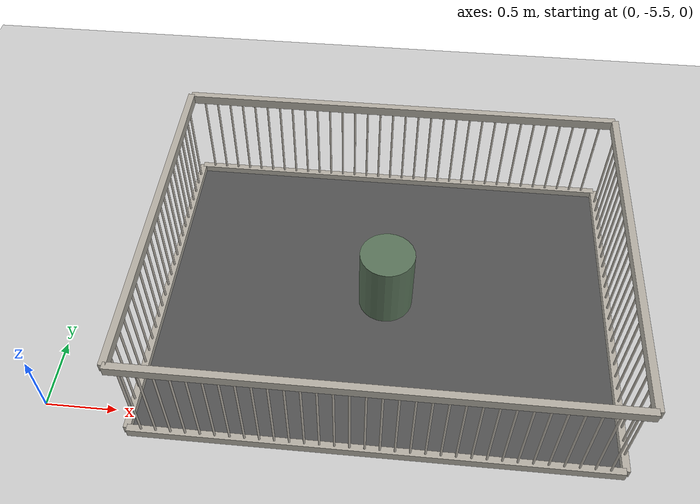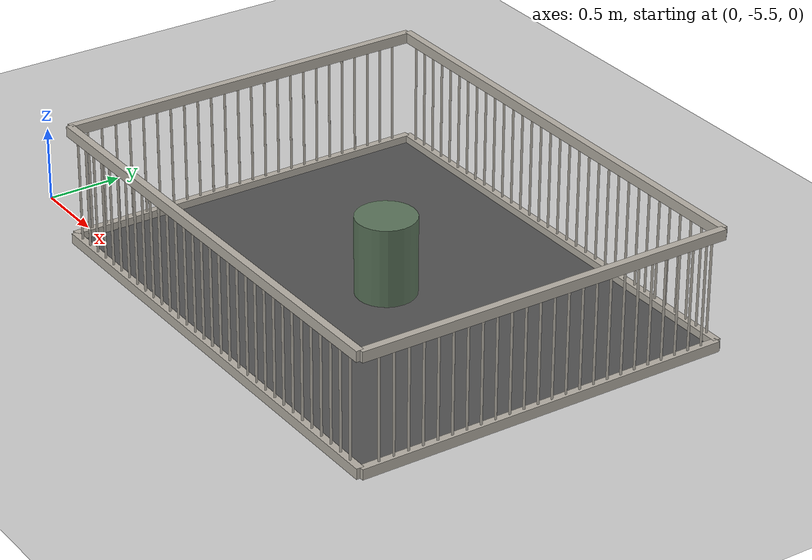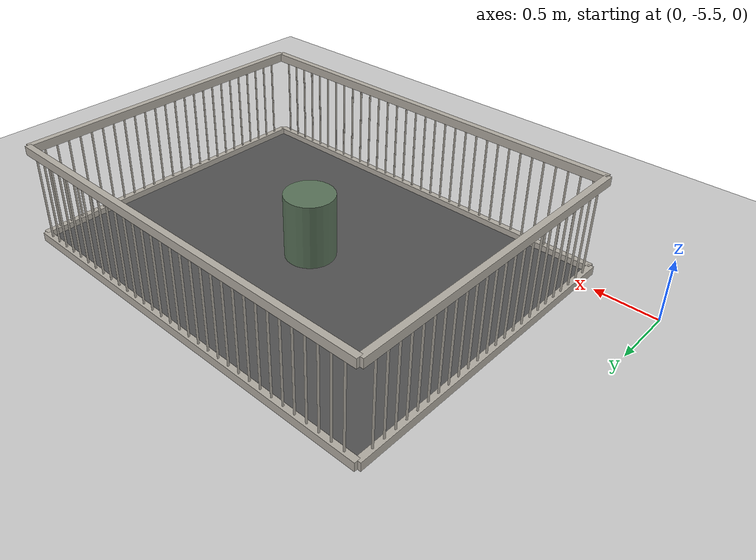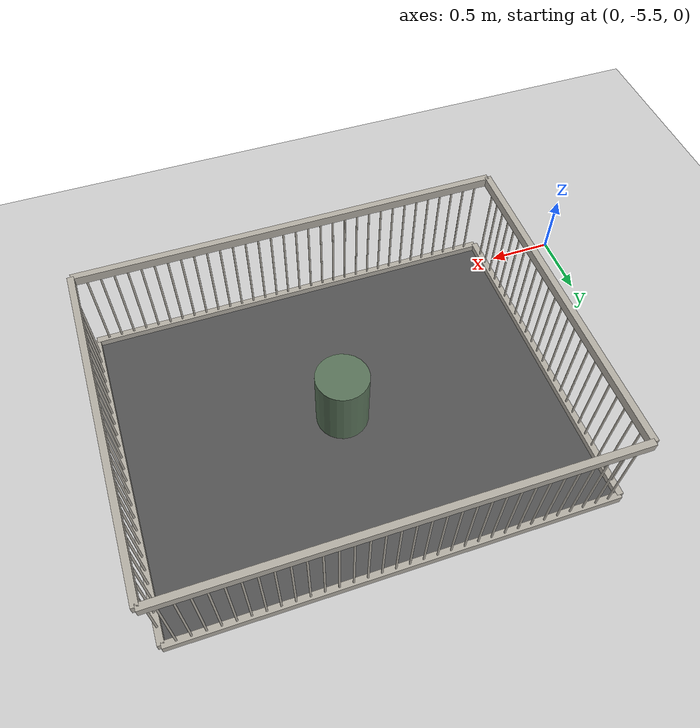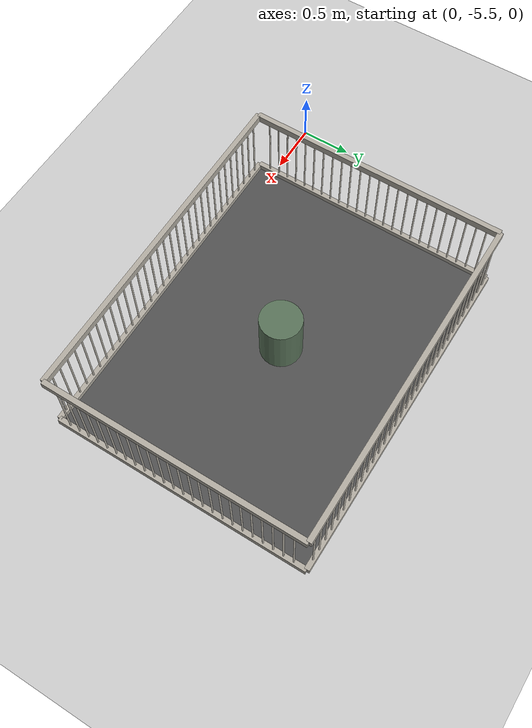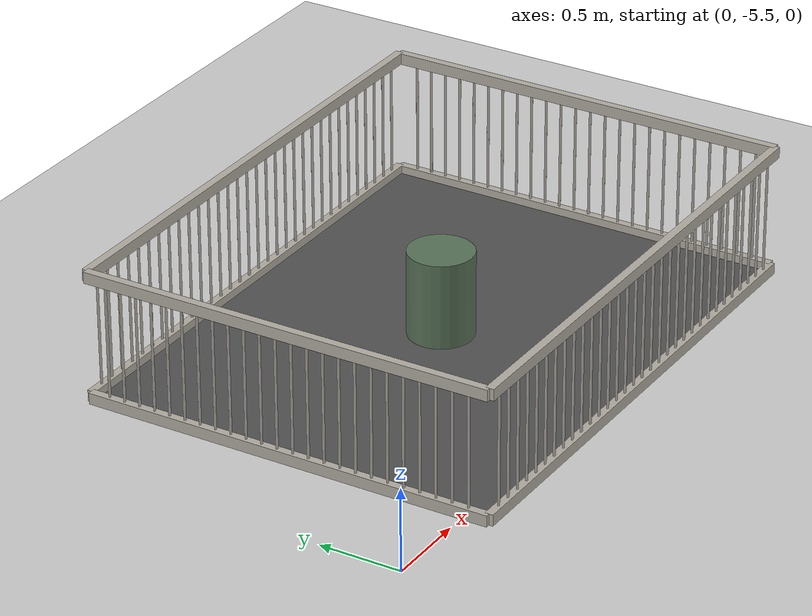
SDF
<sdf version="1.9">
 <world name="pig_pen_16units_world">
  <model name="ground_plane">
   <static>true</static>
   <link name="link">
    <collision name="collision">
     <geometry><plane><normal>0 0 1</normal><size>30 30</size></plane></geometry>
     <surface><friction><ode><mu>1.0</mu><mu2>1.0</mu2></ode></friction></surface>
    </collision>
    <visual name="visual">
     <geometry><plane><normal>0 0 1</normal><size>30 30</size></plane></geometry>
     <material>
      <ambient>0.8 0.8 0.8 1</ambient>
      <diffuse>0.8 0.8 0.8 1</diffuse>
      <specular>0.2 0.2 0.2 1</specular>
     </material>
    </visual>
   </link>
  </model>
  <model name="pen12">
   <pose>2.275 -4.385 0 0 0 0</pose>
   <static>true</static>
   <link name="floor">
    <pose>0 0 0.01 0 0 0</pose>
    <collision name="collision"><geometry><box><size>3.30 2.55 0.02</size></box></geometry></collision>
    <visual name="visual">
     <geometry><box><size>3.30 2.55 0.02</size></box></geometry>
     <material>
      <ambient>0.25 0.25 0.25 1</ambient>
      <diffuse>0.32 0.32 0.32 1</diffuse>
      <specular>0.05 0.05 0.05 1</specular>
     </material>
    </visual>
   </link>
   <link name="left_wall">
    <pose>0 1.275 0.415 0 0 0</pose>
    <collision name="top_rail_col">
     <pose>0 0 0.38 0 0 0</pose>
     <geometry><box><size>3.30 0.05 0.07</size></box></geometry>
    </collision>
    <visual name="top_rail_vis">
     <pose>0 0 0.38 0 0 0</pose>
     <geometry><box><size>3.30 0.05 0.07</size></box></geometry>
     <material><ambient>0.70 0.68 0.64 1</ambient><diffuse>0.70 0.68 0.64 1</diffuse></material>
    </visual>
    <collision name="bottom_rail_col">
     <pose>0 0 -0.38 0 0 0</pose>
     <geometry><box><size>3.30 0.05 0.07</size></box></geometry>
    </collision>
    <visual name="bottom_rail_vis">
     <pose>0 0 -0.38 0 0 0</pose>
     <geometry><box><size>3.30 0.05 0.07</size></box></geometry>
     <material><ambient>0.70 0.68 0.64 1</ambient><diffuse>0.70 0.68 0.64 1</diffuse></material>
    </visual>
    <collision name="bar_01_col">
     <pose>-1.55 0 0 0 0 0</pose>
     <geometry><cylinder><radius>0.0075</radius><length>0.69</length></cylinder></geometry>
    </collision>
    <visual name="bar_01_vis">
     <pose>-1.55 0 0 0 0 0</pose>
     <geometry><cylinder><radius>0.0075</radius><length>0.69</length></cylinder></geometry>
     <material><ambient>0.70 0.68 0.64 1</ambient><diffuse>0.70 0.68 0.64 1</diffuse></material>
    </visual>
    <collision name="bar_02_col">
     <pose>-1.45 0 0 0 0 0</pose>
     <geometry><cylinder><radius>0.0075</radius><length>0.69</length></cylinder></geometry>
    </collision>
    <visual name="bar_02_vis">
     <pose>-1.45 0 0 0 0 0</pose>
     <geometry><cylinder><radius>0.0075</radius><length>0.69</length></cylinder></geometry>
     <material><ambient>0.70 0.68 0.64 1</ambient><diffuse>0.70 0.68 0.64 1</diffuse></material>
    </visual>
    <collision name="bar_03_col">
     <pose>-1.35 0 0 0 0 0</pose>
     <geometry><cylinder><radius>0.0075</radius><length>0.69</length></cylinder></geometry>
    </collision>
    <visual name="bar_03_vis">
     <pose>-1.35 0 0 0 0 0</pose>
     <geometry><cylinder><radius>0.0075</radius><length>0.69</length></cylinder></geometry>
     <material><ambient>0.70 0.68 0.64 1</ambient><diffuse>0.70 0.68 0.64 1</diffuse></material>
    </visual>
    <collision name="bar_04_col">
     <pose>-1.25 0 0 0 0 0</pose>
     <geometry><cylinder><radius>0.0075</radius><length>0.69</length></cylinder></geometry>
    </collision>
    <visual name="bar_04_vis">
     <pose>-1.25 0 0 0 0 0</pose>
     <geometry><cylinder><radius>0.0075</radius><length>0.69</length></cylinder></geometry>
     <material><ambient>0.70 0.68 0.64 1</ambient><diffuse>0.70 0.68 0.64 1</diffuse></material>
    </visual>
    <collision name="bar_05_col">
     <pose>-1.15 0 0 0 0 0</pose>
     <geometry><cylinder><radius>0.0075</radius><length>0.69</length></cylinder></geometry>
    </collision>
    <visual name="bar_05_vis">
     <pose>-1.15 0 0 0 0 0</pose>
     <geometry><cylinder><radius>0.0075</radius><length>0.69</length></cylinder></geometry>
     <material><ambient>0.70 0.68 0.64 1</ambient><diffuse>0.70 0.68 0.64 1</diffuse></material>
    </visual>
    <collision name="bar_06_col">
     <pose>-1.05 0 0 0 0 0</pose>
     <geometry><cylinder><radius>0.0075</radius><length>0.69</length></cylinder></geometry>
    </collision>
    <visual name="bar_06_vis">
     <pose>-1.05 0 0 0 0 0</pose>
     <geometry><cylinder><radius>0.0075</radius><length>0.69</length></cylinder></geometry>
     <material><ambient>0.70 0.68 0.64 1</ambient><diffuse>0.70 0.68 0.64 1</diffuse></material>
    </visual>
    <collision name="bar_07_col">
     <pose>-0.95 0 0 0 0 0</pose>
     <geometry><cylinder><radius>0.0075</radius><length>0.69</length></cylinder></geometry>
    </collision>
    <visual name="bar_07_vis">
     <pose>-0.95 0 0 0 0 0</pose>
     <geometry><cylinder><radius>0.0075</radius><length>0.69</length></cylinder></geometry>
     <material><ambient>0.70 0.68 0.64 1</ambient><diffuse>0.70 0.68 0.64 1</diffuse></material>
    </visual>
    <collision name="bar_08_col">
     <pose>-0.85 0 0 0 0 0</pose>
     <geometry><cylinder><radius>0.0075</radius><length>0.69</length></cylinder></geometry>
    </collision>
    <visual name="bar_08_vis">
     <pose>-0.85 0 0 0 0 0</pose>
     <geometry><cylinder><radius>0.0075</radius><length>0.69</length></cylinder></geometry>
     <material><ambient>0.70 0.68 0.64 1</ambient><diffuse>0.70 0.68 0.64 1</diffuse></material>
    </visual>
    <collision name="bar_09_col">
     <pose>-0.75 0 0 0 0 0</pose>
     <geometry><cylinder><radius>0.0075</radius><length>0.69</length></cylinder></geometry>
    </collision>
    <visual name="bar_09_vis">
     <pose>-0.75 0 0 0 0 0</pose>
     <geometry><cylinder><radius>0.0075</radius><length>0.69</length></cylinder></geometry>
     <material><ambient>0.70 0.68 0.64 1</ambient><diffuse>0.70 0.68 0.64 1</diffuse></material>
    </visual>
    <collision name="bar_10_col">
     <pose>-0.65 0 0 0 0 0</pose>
     <geometry><cylinder><radius>0.0075</radius><length>0.69</length></cylinder></geometry>
    </collision>
    <visual name="bar_10_vis">
     <pose>-0.65 0 0 0 0 0</pose>
     <geometry><cylinder><radius>0.0075</radius><length>0.69</length></cylinder></geometry>
     <material><ambient>0.70 0.68 0.64 1</ambient><diffuse>0.70 0.68 0.64 1</diffuse></material>
    </visual>
    <collision name="bar_11_col">
     <pose>-0.55 0 0 0 0 0</pose>
     <geometry><cylinder><radius>0.0075</radius><length>0.69</length></cylinder></geometry>
    </collision>
    <visual name="bar_11_vis">
     <pose>-0.55 0 0 0 0 0</pose>
     <geometry><cylinder><radius>0.0075</radius><length>0.69</length></cylinder></geometry>
     <material><ambient>0.70 0.68 0.64 1</ambient><diffuse>0.70 0.68 0.64 1</diffuse></material>
    </visual>
    <collision name="bar_12_col">
     <pose>-0.45 0 0 0 0 0</pose>
     <geometry><cylinder><radius>0.0075</radius><length>0.69</length></cylinder></geometry>
    </collision>
    <visual name="bar_12_vis">
     <pose>-0.45 0 0 0 0 0</pose>
     <geometry><cylinder><radius>0.0075</radius><length>0.69</length></cylinder></geometry>
     <material><ambient>0.70 0.68 0.64 1</ambient><diffuse>0.70 0.68 0.64 1</diffuse></material>
    </visual>
    <collision name="bar_13_col">
     <pose>-0.35 0 0 0 0 0</pose>
     <geometry><cylinder><radius>0.0075</radius><length>0.69</length></cylinder></geometry>
    </collision>
    <visual name="bar_13_vis">
     <pose>-0.35 0 0 0 0 0</pose>
     <geometry><cylinder><radius>0.0075</radius><length>0.69</length></cylinder></geometry>
     <material><ambient>0.70 0.68 0.64 1</ambient><diffuse>0.70 0.68 0.64 1</diffuse></material>
    </visual>
    <collision name="bar_14_col">
     <pose>-0.25 0 0 0 0 0</pose>
     <geometry><cylinder><radius>0.0075</radius><length>0.69</length></cylinder></geometry>
    </collision>
    <visual name="bar_14_vis">
     <pose>-0.25 0 0 0 0 0</pose>
     <geometry><cylinder><radius>0.0075</radius><length>0.69</length></cylinder></geometry>
     <material><ambient>0.70 0.68 0.64 1</ambient><diffuse>0.70 0.68 0.64 1</diffuse></material>
    </visual>
    <collision name="bar_15_col">
     <pose>-0.15 0 0 0 0 0</pose>
     <geometry><cylinder><radius>0.0075</radius><length>0.69</length></cylinder></geometry>
    </collision>
    <visual name="bar_15_vis">
     <pose>-0.15 0 0 0 0 0</pose>
     <geometry><cylinder><radius>0.0075</radius><length>0.69</length></cylinder></geometry>
     <material><ambient>0.70 0.68 0.64 1</ambient><diffuse>0.70 0.68 0.64 1</diffuse></material>
    </visual>
    <collision name="bar_16_col">
     <pose>-0.05 0 0 0 0 0</pose>
     <geometry><cylinder><radius>0.0075</radius><length>0.69</length></cylinder></geometry>
    </collision>
    <visual name="bar_16_vis">
     <pose>-0.05 0 0 0 0 0</pose>
     <geometry><cylinder><radius>0.0075</radius><length>0.69</length></cylinder></geometry>
     <material><ambient>0.70 0.68 0.64 1</ambient><diffuse>0.70 0.68 0.64 1</diffuse></material>
    </visual>
    <collision name="bar_17_col">
     <pose>0.05 0 0 0 0 0</pose>
     <geometry><cylinder><radius>0.0075</radius><length>0.69</length></cylinder></geometry>
    </collision>
    <visual name="bar_17_vis">
     <pose>0.05 0 0 0 0 0</pose>
     <geometry><cylinder><radius>0.0075</radius><length>0.69</length></cylinder></geometry>
     <material><ambient>0.70 0.68 0.64 1</ambient><diffuse>0.70 0.68 0.64 1</diffuse></material>
    </visual>
    <collision name="bar_18_col">
     <pose>0.15 0 0 0 0 0</pose>
     <geometry><cylinder><radius>0.0075</radius><length>0.69</length></cylinder></geometry>
    </collision>
    <visual name="bar_18_vis">
     <pose>0.15 0 0 0 0 0</pose>
     <geometry><cylinder><radius>0.0075</radius><length>0.69</length></cylinder></geometry>
     <material><ambient>0.70 0.68 0.64 1</ambient><diffuse>0.70 0.68 0.64 1</diffuse></material>
    </visual>
    <collision name="bar_19_col">
     <pose>0.25 0 0 0 0 0</pose>
     <geometry><cylinder><radius>0.0075</radius><length>0.69</length></cylinder></geometry>
    </collision>
    <visual name="bar_19_vis">
     <pose>0.25 0 0 0 0 0</pose>
     <geometry><cylinder><radius>0.0075</radius><length>0.69</length></cylinder></geometry>
     <material><ambient>0.70 0.68 0.64 1</ambient><diffuse>0.70 0.68 0.64 1</diffuse></material>
    </visual>
    <collision name="bar_20_col">
     <pose>0.35 0 0 0 0 0</pose>
     <geometry><cylinder><radius>0.0075</radius><length>0.69</length></cylinder></geometry>
    </collision>
    <visual name="bar_20_vis">
     <pose>0.35 0 0 0 0 0</pose>
     <geometry><cylinder><radius>0.0075</radius><length>0.69</length></cylinder></geometry>
     <material><ambient>0.70 0.68 0.64 1</ambient><diffuse>0.70 0.68 0.64 1</diffuse></material>
    </visual>
    <collision name="bar_21_col">
     <pose>0.45 0 0 0 0 0</pose>
     <geometry><cylinder><radius>0.0075</radius><length>0.69</length></cylinder></geometry>
    </collision>
    <visual name="bar_21_vis">
     <pose>0.45 0 0 0 0 0</pose>
     <geometry><cylinder><radius>0.0075</radius><length>0.69</length></cylinder></geometry>
     <material><ambient>0.70 0.68 0.64 1</ambient><diffuse>0.70 0.68 0.64 1</diffuse></material>
    </visual>
    <collision name="bar_22_col">
     <pose>0.55 0 0 0 0 0</pose>
     <geometry><cylinder><radius>0.0075</radius><length>0.69</length></cylinder></geometry>
    </collision>
    <visual name="bar_22_vis">
     <pose>0.55 0 0 0 0 0</pose>
     <geometry><cylinder><radius>0.0075</radius><length>0.69</length></cylinder></geometry>
     <material><ambient>0.70 0.68 0.64 1</ambient><diffuse>0.70 0.68 0.64 1</diffuse></material>
    </visual>
    <collision name="bar_23_col">
     <pose>0.65 0 0 0 0 0</pose>
     <geometry><cylinder><radius>0.0075</radius><length>0.69</length></cylinder></geometry>
    </collision>
    <visual name="bar_23_vis">
     <pose>0.65 0 0 0 0 0</pose>
     <geometry><cylinder><radius>0.0075</radius><length>0.69</length></cylinder></geometry>
     <material><ambient>0.70 0.68 0.64 1</ambient><diffuse>0.70 0.68 0.64 1</diffuse></material>
    </visual>
    <collision name="bar_24_col">
     <pose>0.75 0 0 0 0 0</pose>
     <geometry><cylinder><radius>0.0075</radius><length>0.69</length></cylinder></geometry>
    </collision>
    <visual name="bar_24_vis">
     <pose>0.75 0 0 0 0 0</pose>
     <geometry><cylinder><radius>0.0075</radius><length>0.69</length></cylinder></geometry>
     <material><ambient>0.70 0.68 0.64 1</ambient><diffuse>0.70 0.68 0.64 1</diffuse></material>
    </visual>
    <collision name="bar_25_col">
     <pose>0.85 0 0 0 0 0</pose>
     <geometry><cylinder><radius>0.0075</radius><length>0.69</length></cylinder></geometry>
    </collision>
    <visual name="bar_25_vis">
     <pose>0.85 0 0 0 0 0</pose>
     <geometry><cylinder><radius>0.0075</radius><length>0.69</length></cylinder></geometry>
     <material><ambient>0.70 0.68 0.64 1</ambient><diffuse>0.70 0.68 0.64 1</diffuse></material>
    </visual>
    <collision name="bar_26_col">
     <pose>0.95 0 0 0 0 0</pose>
     <geometry><cylinder><radius>0.0075</radius><length>0.69</length></cylinder></geometry>
    </collision>
    <visual name="bar_26_vis">
     <pose>0.95 0 0 0 0 0</pose>
     <geometry><cylinder><radius>0.0075</radius><length>0.69</length></cylinder></geometry>
     <material><ambient>0.70 0.68 0.64 1</ambient><diffuse>0.70 0.68 0.64 1</diffuse></material>
    </visual>
    <collision name="bar_27_col">
     <pose>1.05 0 0 0 0 0</pose>
     <geometry><cylinder><radius>0.0075</radius><length>0.69</length></cylinder></geometry>
    </collision>
    <visual name="bar_27_vis">
     <pose>1.05 0 0 0 0 0</pose>
     <geometry><cylinder><radius>0.0075</radius><length>0.69</length></cylinder></geometry>
     <material><ambient>0.70 0.68 0.64 1</ambient><diffuse>0.70 0.68 0.64 1</diffuse></material>
    </visual>
    <collision name="bar_28_col">
     <pose>1.15 0 0 0 0 0</pose>
     <geometry><cylinder><radius>0.0075</radius><length>0.69</length></cylinder></geometry>
    </collision>
    <visual name="bar_28_vis">
     <pose>1.15 0 0 0 0 0</pose>
     <geometry><cylinder><radius>0.0075</radius><length>0.69</length></cylinder></geometry>
     <material><ambient>0.70 0.68 0.64 1</ambient><diffuse>0.70 0.68 0.64 1</diffuse></material>
    </visual>
    <collision name="bar_29_col">
     <pose>1.25 0 0 0 0 0</pose>
     <geometry><cylinder><radius>0.0075</radius><length>0.69</length></cylinder></geometry>
    </collision>
    <visual name="bar_29_vis">
     <pose>1.25 0 0 0 0 0</pose>
     <geometry><cylinder><radius>0.0075</radius><length>0.69</length></cylinder></geometry>
     <material><ambient>0.70 0.68 0.64 1</ambient><diffuse>0.70 0.68 0.64 1</diffuse></material>
    </visual>
    <collision name="bar_30_col">
     <pose>1.35 0 0 0 0 0</pose>
     <geometry><cylinder><radius>0.0075</radius><length>0.69</length></cylinder></geometry>
    </collision>
    <visual name="bar_30_vis">
     <pose>1.35 0 0 0 0 0</pose>
     <geometry><cylinder><radius>0.0075</radius><length>0.69</length></cylinder></geometry>
     <material><ambient>0.70 0.68 0.64 1</ambient><diffuse>0.70 0.68 0.64 1</diffuse></material>
    </visual>
    <collision name="bar_31_col">
     <pose>1.45 0 0 0 0 0</pose>
     <geometry><cylinder><radius>0.0075</radius><length>0.69</length></cylinder></geometry>
    </collision>
    <visual name="bar_31_vis">
     <pose>1.45 0 0 0 0 0</pose>
     <geometry><cylinder><radius>0.0075</radius><length>0.69</length></cylinder></geometry>
     <material><ambient>0.70 0.68 0.64 1</ambient><diffuse>0.70 0.68 0.64 1</diffuse></material>
    </visual>
    <collision name="bar_32_col">
     <pose>1.55 0 0 0 0 0</pose>
     <geometry><cylinder><radius>0.0075</radius><length>0.69</length></cylinder></geometry>
    </collision>
    <visual name="bar_32_vis">
     <pose>1.55 0 0 0 0 0</pose>
     <geometry><cylinder><radius>0.0075</radius><length>0.69</length></cylinder></geometry>
     <material><ambient>0.70 0.68 0.64 1</ambient><diffuse>0.70 0.68 0.64 1</diffuse></material>
    </visual>
   </link>
   <link name="right_wall">
    <pose>0 -1.275 0.415 0 0 0</pose>
    <collision name="top_rail_col">
     <pose>0 0 0.38 0 0 0</pose>
     <geometry><box><size>3.30 0.05 0.07</size></box></geometry>
    </collision>
    <visual name="top_rail_vis">
     <pose>0 0 0.38 0 0 0</pose>
     <geometry><box><size>3.30 0.05 0.07</size></box></geometry>
     <material><ambient>0.70 0.68 0.64 1</ambient><diffuse>0.70 0.68 0.64 1</diffuse></material>
    </visual>
    <collision name="bottom_rail_col">
     <pose>0 0 -0.38 0 0 0</pose>
     <geometry><box><size>3.30 0.05 0.07</size></box></geometry>
    </collision>
    <visual name="bottom_rail_vis">
     <pose>0 0 -0.38 0 0 0</pose>
     <geometry><box><size>3.30 0.05 0.07</size></box></geometry>
     <material><ambient>0.70 0.68 0.64 1</ambient><diffuse>0.70 0.68 0.64 1</diffuse></material>
    </visual>
    <collision name="bar_01_col">
     <pose>-1.55 0 0 0 0 0</pose>
     <geometry><cylinder><radius>0.0075</radius><length>0.69</length></cylinder></geometry>
    </collision>
    <visual name="bar_01_vis">
     <pose>-1.55 0 0 0 0 0</pose>
     <geometry><cylinder><radius>0.0075</radius><length>0.69</length></cylinder></geometry>
     <material><ambient>0.70 0.68 0.64 1</ambient><diffuse>0.70 0.68 0.64 1</diffuse></material>
    </visual>
    <collision name="bar_02_col">
     <pose>-1.45 0 0 0 0 0</pose>
     <geometry><cylinder><radius>0.0075</radius><length>0.69</length></cylinder></geometry>
    </collision>
    <visual name="bar_02_vis">
     <pose>-1.45 0 0 0 0 0</pose>
     <geometry><cylinder><radius>0.0075</radius><length>0.69</length></cylinder></geometry>
     <material><ambient>0.70 0.68 0.64 1</ambient><diffuse>0.70 0.68 0.64 1</diffuse></material>
    </visual>
    <collision name="bar_03_col">
     <pose>-1.35 0 0 0 0 0</pose>
     <geometry><cylinder><radius>0.0075</radius><length>0.69</length></cylinder></geometry>
    </collision>
    <visual name="bar_03_vis">
     <pose>-1.35 0 0 0 0 0</pose>
     <geometry><cylinder><radius>0.0075</radius><length>0.69</length></cylinder></geometry>
     <material><ambient>0.70 0.68 0.64 1</ambient><diffuse>0.70 0.68 0.64 1</diffuse></material>
    </visual>
    <collision name="bar_04_col">
     <pose>-1.25 0 0 0 0 0</pose>
     <geometry><cylinder><radius>0.0075</radius><length>0.69</length></cylinder></geometry>
    </collision>
    <visual name="bar_04_vis">
     <pose>-1.25 0 0 0 0 0</pose>
     <geometry><cylinder><radius>0.0075</radius><length>0.69</length></cylinder></geometry>
     <material><ambient>0.70 0.68 0.64 1</ambient><diffuse>0.70 0.68 0.64 1</diffuse></material>
    </visual>
    <collision name="bar_05_col">
     <pose>-1.15 0 0 0 0 0</pose>
     <geometry><cylinder><radius>0.0075</radius><length>0.69</length></cylinder></geometry>
    </collision>
    <visual name="bar_05_vis">
     <pose>-1.15 0 0 0 0 0</pose>
     <geometry><cylinder><radius>0.0075</radius><length>0.69</length></cylinder></geometry>
     <material><ambient>0.70 0.68 0.64 1</ambient><diffuse>0.70 0.68 0.64 1</diffuse></material>
    </visual>
    <collision name="bar_06_col">
     <pose>-1.05 0 0 0 0 0</pose>
     <geometry><cylinder><radius>0.0075</radius><length>0.69</length></cylinder></geometry>
    </collision>
    <visual name="bar_06_vis">
     <pose>-1.05 0 0 0 0 0</pose>
     <geometry><cylinder><radius>0.0075</radius><length>0.69</length></cylinder></geometry>
     <material><ambient>0.70 0.68 0.64 1</ambient><diffuse>0.70 0.68 0.64 1</diffuse></material>
    </visual>
    <collision name="bar_07_col">
     <pose>-0.95 0 0 0 0 0</pose>
     <geometry><cylinder><radius>0.0075</radius><length>0.69</length></cylinder></geometry>
    </collision>
    <visual name="bar_07_vis">
     <pose>-0.95 0 0 0 0 0</pose>
     <geometry><cylinder><radius>0.0075</radius><length>0.69</length></cylinder></geometry>
     <material><ambient>0.70 0.68 0.64 1</ambient><diffuse>0.70 0.68 0.64 1</diffuse></material>
    </visual>
    <collision name="bar_08_col">
     <pose>-0.85 0 0 0 0 0</pose>
     <geometry><cylinder><radius>0.0075</radius><length>0.69</length></cylinder></geometry>
    </collision>
    <visual name="bar_08_vis">
     <pose>-0.85 0 0 0 0 0</pose>
     <geometry><cylinder><radius>0.0075</radius><length>0.69</length></cylinder></geometry>
     <material><ambient>0.70 0.68 0.64 1</ambient><diffuse>0.70 0.68 0.64 1</diffuse></material>
    </visual>
    <collision name="bar_09_col">
     <pose>-0.75 0 0 0 0 0</pose>
     <geometry><cylinder><radius>0.0075</radius><length>0.69</length></cylinder></geometry>
    </collision>
    <visual name="bar_09_vis">
     <pose>-0.75 0 0 0 0 0</pose>
     <geometry><cylinder><radius>0.0075</radius><length>0.69</length></cylinder></geometry>
     <material><ambient>0.70 0.68 0.64 1</ambient><diffuse>0.70 0.68 0.64 1</diffuse></material>
    </visual>
    <collision name="bar_10_col">
     <pose>-0.65 0 0 0 0 0</pose>
     <geometry><cylinder><radius>0.0075</radius><length>0.69</length></cylinder></geometry>
    </collision>
    <visual name="bar_10_vis">
     <pose>-0.65 0 0 0 0 0</pose>
     <geometry><cylinder><radius>0.0075</radius><length>0.69</length></cylinder></geometry>
     <material><ambient>0.70 0.68 0.64 1</ambient><diffuse>0.70 0.68 0.64 1</diffuse></material>
    </visual>
    <collision name="bar_11_col">
     <pose>-0.55 0 0 0 0 0</pose>
     <geometry><cylinder><radius>0.0075</radius><length>0.69</length></cylinder></geometry>
    </collision>
    <visual name="bar_11_vis">
     <pose>-0.55 0 0 0 0 0</pose>
     <geometry><cylinder><radius>0.0075</radius><length>0.69</length></cylinder></geometry>
     <material><ambient>0.70 0.68 0.64 1</ambient><diffuse>0.70 0.68 0.64 1</diffuse></material>
    </visual>
    <collision name="bar_12_col">
     <pose>-0.45 0 0 0 0 0</pose>
     <geometry><cylinder><radius>0.0075</radius><length>0.69</length></cylinder></geometry>
    </collision>
    <visual name="bar_12_vis">
     <pose>-0.45 0 0 0 0 0</pose>
     <geometry><cylinder><radius>0.0075</radius><length>0.69</length></cylinder></geometry>
     <material><ambient>0.70 0.68 0.64 1</ambient><diffuse>0.70 0.68 0.64 1</diffuse></material>
    </visual>
    <collision name="bar_13_col">
     <pose>-0.35 0 0 0 0 0</pose>
     <geometry><cylinder><radius>0.0075</radius><length>0.69</length></cylinder></geometry>
    </collision>
    <visual name="bar_13_vis">
     <pose>-0.35 0 0 0 0 0</pose>
     <geometry><cylinder><radius>0.0075</radius><length>0.69</length></cylinder></geometry>
     <material><ambient>0.70 0.68 0.64 1</ambient><diffuse>0.70 0.68 0.64 1</diffuse></material>
    </visual>
    <collision name="bar_14_col">
     <pose>-0.25 0 0 0 0 0</pose>
     <geometry><cylinder><radius>0.0075</radius><length>0.69</length></cylinder></geometry>
    </collision>
    <visual name="bar_14_vis">
     <pose>-0.25 0 0 0 0 0</pose>
     <geometry><cylinder><radius>0.0075</radius><length>0.69</length></cylinder></geometry>
     <material><ambient>0.70 0.68 0.64 1</ambient><diffuse>0.70 0.68 0.64 1</diffuse></material>
    </visual>
    <collision name="bar_15_col">
     <pose>-0.15 0 0 0 0 0</pose>
     <geometry><cylinder><radius>0.0075</radius><length>0.69</length></cylinder></geometry>
    </collision>
    <visual name="bar_15_vis">
     <pose>-0.15 0 0 0 0 0</pose>
     <geometry><cylinder><radius>0.0075</radius><length>0.69</length></cylinder></geometry>
     <material><ambient>0.70 0.68 0.64 1</ambient><diffuse>0.70 0.68 0.64 1</diffuse></material>
    </visual>
    <collision name="bar_16_col">
     <pose>-0.05 0 0 0 0 0</pose>
     <geometry><cylinder><radius>0.0075</radius><length>0.69</length></cylinder></geometry>
    </collision>
    <visual name="bar_16_vis">
     <pose>-0.05 0 0 0 0 0</pose>
     <geometry><cylinder><radius>0.0075</radius><length>0.69</length></cylinder></geometry>
     <material><ambient>0.70 0.68 0.64 1</ambient><diffuse>0.70 0.68 0.64 1</diffuse></material>
    </visual>
    <collision name="bar_17_col">
     <pose>0.05 0 0 0 0 0</pose>
     <geometry><cylinder><radius>0.0075</radius><length>0.69</length></cylinder></geometry>
    </collision>
    <visual name="bar_17_vis">
     <pose>0.05 0 0 0 0 0</pose>
     <geometry><cylinder><radius>0.0075</radius><length>0.69</length></cylinder></geometry>
     <material><ambient>0.70 0.68 0.64 1</ambient><diffuse>0.70 0.68 0.64 1</diffuse></material>
    </visual>
    <collision name="bar_18_col">
     <pose>0.15 0 0 0 0 0</pose>
     <geometry><cylinder><radius>0.0075</radius><length>0.69</length></cylinder></geometry>
    </collision>
    <visual name="bar_18_vis">
     <pose>0.15 0 0 0 0 0</pose>
     <geometry><cylinder><radius>0.0075</radius><length>0.69</length></cylinder></geometry>
     <material><ambient>0.70 0.68 0.64 1</ambient><diffuse>0.70 0.68 0.64 1</diffuse></material>
    </visual>
    <collision name="bar_19_col">
     <pose>0.25 0 0 0 0 0</pose>
     <geometry><cylinder><radius>0.0075</radius><length>0.69</length></cylinder></geometry>
    </collision>
    <visual name="bar_19_vis">
     <pose>0.25 0 0 0 0 0</pose>
     <geometry><cylinder><radius>0.0075</radius><length>0.69</length></cylinder></geometry>
     <material><ambient>0.70 0.68 0.64 1</ambient><diffuse>0.70 0.68 0.64 1</diffuse></material>
    </visual>
    <collision name="bar_20_col">
     <pose>0.35 0 0 0 0 0</pose>
     <geometry><cylinder><radius>0.0075</radius><length>0.69</length></cylinder></geometry>
    </collision>
    <visual name="bar_20_vis">
     <pose>0.35 0 0 0 0 0</pose>
     <geometry><cylinder><radius>0.0075</radius><length>0.69</length></cylinder></geometry>
     <material><ambient>0.70 0.68 0.64 1</ambient><diffuse>0.70 0.68 0.64 1</diffuse></material>
    </visual>
    <collision name="bar_21_col">
     <pose>0.45 0 0 0 0 0</pose>
     <geometry><cylinder><radius>0.0075</radius><length>0.69</length></cylinder></geometry>
    </collision>
    <visual name="bar_21_vis">
     <pose>0.45 0 0 0 0 0</pose>
     <geometry><cylinder><radius>0.0075</radius><length>0.69</length></cylinder></geometry>
     <material><ambient>0.70 0.68 0.64 1</ambient><diffuse>0.70 0.68 0.64 1</diffuse></material>
    </visual>
    <collision name="bar_22_col">
     <pose>0.55 0 0 0 0 0</pose>
     <geometry><cylinder><radius>0.0075</radius><length>0.69</length></cylinder></geometry>
    </collision>
    <visual name="bar_22_vis">
     <pose>0.55 0 0 0 0 0</pose>
     <geometry><cylinder><radius>0.0075</radius><length>0.69</length></cylinder></geometry>
     <material><ambient>0.70 0.68 0.64 1</ambient><diffuse>0.70 0.68 0.64 1</diffuse></material>
    </visual>
    <collision name="bar_23_col">
     <pose>0.65 0 0 0 0 0</pose>
     <geometry><cylinder><radius>0.0075</radius><length>0.69</length></cylinder></geometry>
    </collision>
    <visual name="bar_23_vis">
     <pose>0.65 0 0 0 0 0</pose>
     <geometry><cylinder><radius>0.0075</radius><length>0.69</length></cylinder></geometry>
     <material><ambient>0.70 0.68 0.64 1</ambient><diffuse>0.70 0.68 0.64 1</diffuse></material>
    </visual>
    <collision name="bar_24_col">
     <pose>0.75 0 0 0 0 0</pose>
     <geometry><cylinder><radius>0.0075</radius><length>0.69</length></cylinder></geometry>
    </collision>
    <visual name="bar_24_vis">
     <pose>0.75 0 0 0 0 0</pose>
     <geometry><cylinder><radius>0.0075</radius><length>0.69</length></cylinder></geometry>
     <material><ambient>0.70 0.68 0.64 1</ambient><diffuse>0.70 0.68 0.64 1</diffuse></material>
    </visual>
    <collision name="bar_25_col">
     <pose>0.85 0 0 0 0 0</pose>
     <geometry><cylinder><radius>0.0075</radius><length>0.69</length></cylinder></geometry>
    </collision>
    <visual name="bar_25_vis">
     <pose>0.85 0 0 0 0 0</pose>
     <geometry><cylinder><radius>0.0075</radius><length>0.69</length></cylinder></geometry>
     <material><ambient>0.70 0.68 0.64 1</ambient><diffuse>0.70 0.68 0.64 1</diffuse></material>
    </visual>
    <collision name="bar_26_col">
     <pose>0.95 0 0 0 0 0</pose>
     <geometry><cylinder><radius>0.0075</radius><length>0.69</length></cylinder></geometry>
    </collision>
    <visual name="bar_26_vis">
     <pose>0.95 0 0 0 0 0</pose>
     <geometry><cylinder><radius>0.0075</radius><length>0.69</length></cylinder></geometry>
     <material><ambient>0.70 0.68 0.64 1</ambient><diffuse>0.70 0.68 0.64 1</diffuse></material>
    </visual>
    <collision name="bar_27_col">
     <pose>1.05 0 0 0 0 0</pose>
     <geometry><cylinder><radius>0.0075</radius><length>0.69</length></cylinder></geometry>
    </collision>
    <visual name="bar_27_vis">
     <pose>1.05 0 0 0 0 0</pose>
     <geometry><cylinder><radius>0.0075</radius><length>0.69</length></cylinder></geometry>
     <material><ambient>0.70 0.68 0.64 1</ambient><diffuse>0.70 0.68 0.64 1</diffuse></material>
    </visual>
    <collision name="bar_28_col">
     <pose>1.15 0 0 0 0 0</pose>
     <geometry><cylinder><radius>0.0075</radius><length>0.69</length></cylinder></geometry>
    </collision>
    <visual name="bar_28_vis">
     <pose>1.15 0 0 0 0 0</pose>
     <geometry><cylinder><radius>0.0075</radius><length>0.69</length></cylinder></geometry>
     <material><ambient>0.70 0.68 0.64 1</ambient><diffuse>0.70 0.68 0.64 1</diffuse></material>
    </visual>
    <collision name="bar_29_col">
     <pose>1.25 0 0 0 0 0</pose>
     <geometry><cylinder><radius>0.0075</radius><length>0.69</length></cylinder></geometry>
    </collision>
    <visual name="bar_29_vis">
     <pose>1.25 0 0 0 0 0</pose>
     <geometry><cylinder><radius>0.0075</radius><length>0.69</length></cylinder></geometry>
     <material><ambient>0.70 0.68 0.64 1</ambient><diffuse>0.70 0.68 0.64 1</diffuse></material>
    </visual>
    <collision name="bar_30_col">
     <pose>1.35 0 0 0 0 0</pose>
     <geometry><cylinder><radius>0.0075</radius><length>0.69</length></cylinder></geometry>
    </collision>
    <visual name="bar_30_vis">
     <pose>1.35 0 0 0 0 0</pose>
     <geometry><cylinder><radius>0.0075</radius><length>0.69</length></cylinder></geometry>
     <material><ambient>0.70 0.68 0.64 1</ambient><diffuse>0.70 0.68 0.64 1</diffuse></material>
    </visual>
    <collision name="bar_31_col">
     <pose>1.45 0 0 0 0 0</pose>
     <geometry><cylinder><radius>0.0075</radius><length>0.69</length></cylinder></geometry>
    </collision>
    <visual name="bar_31_vis">
     <pose>1.45 0 0 0 0 0</pose>
     <geometry><cylinder><radius>0.0075</radius><length>0.69</length></cylinder></geometry>
     <material><ambient>0.70 0.68 0.64 1</ambient><diffuse>0.70 0.68 0.64 1</diffuse></material>
    </visual>
    <collision name="bar_32_col">
     <pose>1.55 0 0 0 0 0</pose>
     <geometry><cylinder><radius>0.0075</radius><length>0.69</length></cylinder></geometry>
    </collision>
    <visual name="bar_32_vis">
     <pose>1.55 0 0 0 0 0</pose>
     <geometry><cylinder><radius>0.0075</radius><length>0.69</length></cylinder></geometry>
     <material><ambient>0.70 0.68 0.64 1</ambient><diffuse>0.70 0.68 0.64 1</diffuse></material>
    </visual>
   </link>
   <link name="back_wall">
    <pose>1.65 0 0.415 0 0 0</pose>
    <collision name="top_rail_col">
     <pose>0 0 0.38 0 0 0</pose>
     <geometry><box><size>0.05 2.55 0.07</size></box></geometry>
    </collision>
    <visual name="top_rail_vis">
     <pose>0 0 0.38 0 0 0</pose>
     <geometry><box><size>0.05 2.55 0.07</size></box></geometry>
     <material><ambient>0.70 0.68 0.64 1</ambient><diffuse>0.70 0.68 0.64 1</diffuse></material>
    </visual>
    <collision name="bottom_rail_col">
     <pose>0 0 -0.38 0 0 0</pose>
     <geometry><box><size>0.05 2.55 0.07</size></box></geometry>
    </collision>
    <visual name="bottom_rail_vis">
     <pose>0 0 -0.38 0 0 0</pose>
     <geometry><box><size>0.05 2.55 0.07</size></box></geometry>
     <material><ambient>0.70 0.68 0.64 1</ambient><diffuse>0.70 0.68 0.64 1</diffuse></material>
    </visual>
    <collision name="bar_01_col">
     <pose>0 -1.15 0 0 0 0</pose>
     <geometry><cylinder><radius>0.0075</radius><length>0.69</length></cylinder></geometry>
    </collision>
    <visual name="bar_01_vis">
     <pose>0 -1.15 0 0 0 0</pose>
     <geometry><cylinder><radius>0.0075</radius><length>0.69</length></cylinder></geometry>
     <material><ambient>0.70 0.68 0.64 1</ambient><diffuse>0.70 0.68 0.64 1</diffuse></material>
    </visual>
    <collision name="bar_02_col">
     <pose>0 -1.05 0 0 0 0</pose>
     <geometry><cylinder><radius>0.0075</radius><length>0.69</length></cylinder></geometry>
    </collision>
    <visual name="bar_02_vis">
     <pose>0 -1.05 0 0 0 0</pose>
     <geometry><cylinder><radius>0.0075</radius><length>0.69</length></cylinder></geometry>
     <material><ambient>0.70 0.68 0.64 1</ambient><diffuse>0.70 0.68 0.64 1</diffuse></material>
    </visual>
    <collision name="bar_03_col">
     <pose>0 -0.95 0 0 0 0</pose>
     <geometry><cylinder><radius>0.0075</radius><length>0.69</length></cylinder></geometry>
    </collision>
    <visual name="bar_03_vis">
     <pose>0 -0.95 0 0 0 0</pose>
     <geometry><cylinder><radius>0.0075</radius><length>0.69</length></cylinder></geometry>
     <material><ambient>0.70 0.68 0.64 1</ambient><diffuse>0.70 0.68 0.64 1</diffuse></material>
    </visual>
    <collision name="bar_04_col">
     <pose>0 -0.85 0 0 0 0</pose>
     <geometry><cylinder><radius>0.0075</radius><length>0.69</length></cylinder></geometry>
    </collision>
    <visual name="bar_04_vis">
     <pose>0 -0.85 0 0 0 0</pose>
     <geometry><cylinder><radius>0.0075</radius><length>0.69</length></cylinder></geometry>
     <material><ambient>0.70 0.68 0.64 1</ambient><diffuse>0.70 0.68 0.64 1</diffuse></material>
    </visual>
    <collision name="bar_05_col">
     <pose>0 -0.75 0 0 0 0</pose>
     <geometry><cylinder><radius>0.0075</radius><length>0.69</length></cylinder></geometry>
    </collision>
    <visual name="bar_05_vis">
     <pose>0 -0.75 0 0 0 0</pose>
     <geometry><cylinder><radius>0.0075</radius><length>0.69</length></cylinder></geometry>
     <material><ambient>0.70 0.68 0.64 1</ambient><diffuse>0.70 0.68 0.64 1</diffuse></material>
    </visual>
    <collision name="bar_06_col">
     <pose>0 -0.65 0 0 0 0</pose>
     <geometry><cylinder><radius>0.0075</radius><length>0.69</length></cylinder></geometry>
    </collision>
    <visual name="bar_06_vis">
     <pose>0 -0.65 0 0 0 0</pose>
     <geometry><cylinder><radius>0.0075</radius><length>0.69</length></cylinder></geometry>
     <material><ambient>0.70 0.68 0.64 1</ambient><diffuse>0.70 0.68 0.64 1</diffuse></material>
    </visual>
    <collision name="bar_07_col">
     <pose>0 -0.55 0 0 0 0</pose>
     <geometry><cylinder><radius>0.0075</radius><length>0.69</length></cylinder></geometry>
    </collision>
    <visual name="bar_07_vis">
     <pose>0 -0.55 0 0 0 0</pose>
     <geometry><cylinder><radius>0.0075</radius><length>0.69</length></cylinder></geometry>
     <material><ambient>0.70 0.68 0.64 1</ambient><diffuse>0.70 0.68 0.64 1</diffuse></material>
    </visual>
    <collision name="bar_08_col">
     <pose>0 -0.45 0 0 0 0</pose>
     <geometry><cylinder><radius>0.0075</radius><length>0.69</length></cylinder></geometry>
    </collision>
    <visual name="bar_08_vis">
     <pose>0 -0.45 0 0 0 0</pose>
     <geometry><cylinder><radius>0.0075</radius><length>0.69</length></cylinder></geometry>
     <material><ambient>0.70 0.68 0.64 1</ambient><diffuse>0.70 0.68 0.64 1</diffuse></material>
    </visual>
    <collision name="bar_09_col">
     <pose>0 -0.35 0 0 0 0</pose>
     <geometry><cylinder><radius>0.0075</radius><length>0.69</length></cylinder></geometry>
    </collision>
    <visual name="bar_09_vis">
     <pose>0 -0.35 0 0 0 0</pose>
     <geometry><cylinder><radius>0.0075</radius><length>0.69</length></cylinder></geometry>
     <material><ambient>0.70 0.68 0.64 1</ambient><diffuse>0.70 0.68 0.64 1</diffuse></material>
    </visual>
    <collision name="bar_10_col">
     <pose>0 -0.25 0 0 0 0</pose>
     <geometry><cylinder><radius>0.0075</radius><length>0.69</length></cylinder></geometry>
    </collision>
    <visual name="bar_10_vis">
     <pose>0 -0.25 0 0 0 0</pose>
     <geometry><cylinder><radius>0.0075</radius><length>0.69</length></cylinder></geometry>
     <material><ambient>0.70 0.68 0.64 1</ambient><diffuse>0.70 0.68 0.64 1</diffuse></material>
    </visual>
    <collision name="bar_11_col">
     <pose>0 -0.15 0 0 0 0</pose>
     <geometry><cylinder><radius>0.0075</radius><length>0.69</length></cylinder></geometry>
    </collision>
    <visual name="bar_11_vis">
     <pose>0 -0.15 0 0 0 0</pose>
     <geometry><cylinder><radius>0.0075</radius><length>0.69</length></cylinder></geometry>
     <material><ambient>0.70 0.68 0.64 1</ambient><diffuse>0.70 0.68 0.64 1</diffuse></material>
    </visual>
    <collision name="bar_12_col">
     <pose>0 -0.05 0 0 0 0</pose>
     <geometry><cylinder><radius>0.0075</radius><length>0.69</length></cylinder></geometry>
    </collision>
    <visual name="bar_12_vis">
     <pose>0 -0.05 0 0 0 0</pose>
     <geometry><cylinder><radius>0.0075</radius><length>0.69</length></cylinder></geometry>
     <material><ambient>0.70 0.68 0.64 1</ambient><diffuse>0.70 0.68 0.64 1</diffuse></material>
    </visual>
    <collision name="bar_13_col">
     <pose>0 0.05 0 0 0 0</pose>
     <geometry><cylinder><radius>0.0075</radius><length>0.69</length></cylinder></geometry>
    </collision>
    <visual name="bar_13_vis">
     <pose>0 0.05 0 0 0 0</pose>
     <geometry><cylinder><radius>0.0075</radius><length>0.69</length></cylinder></geometry>
     <material><ambient>0.70 0.68 0.64 1</ambient><diffuse>0.70 0.68 0.64 1</diffuse></material>
    </visual>
    <collision name="bar_14_col">
     <pose>0 0.15 0 0 0 0</pose>
     <geometry><cylinder><radius>0.0075</radius><length>0.69</length></cylinder></geometry>
    </collision>
    <visual name="bar_14_vis">
     <pose>0 0.15 0 0 0 0</pose>
     <geometry><cylinder><radius>0.0075</radius><length>0.69</length></cylinder></geometry>
     <material><ambient>0.70 0.68 0.64 1</ambient><diffuse>0.70 0.68 0.64 1</diffuse></material>
    </visual>
    <collision name="bar_15_col">
     <pose>0 0.25 0 0 0 0</pose>
     <geometry><cylinder><radius>0.0075</radius><length>0.69</length></cylinder></geometry>
    </collision>
    <visual name="bar_15_vis">
     <pose>0 0.25 0 0 0 0</pose>
     <geometry><cylinder><radius>0.0075</radius><length>0.69</length></cylinder></geometry>
     <material><ambient>0.70 0.68 0.64 1</ambient><diffuse>0.70 0.68 0.64 1</diffuse></material>
    </visual>
    <collision name="bar_16_col">
     <pose>0 0.35 0 0 0 0</pose>
     <geometry><cylinder><radius>0.0075</radius><length>0.69</length></cylinder></geometry>
    </collision>
    <visual name="bar_16_vis">
     <pose>0 0.35 0 0 0 0</pose>
     <geometry><cylinder><radius>0.0075</radius><length>0.69</length></cylinder></geometry>
     <material><ambient>0.70 0.68 0.64 1</ambient><diffuse>0.70 0.68 0.64 1</diffuse></material>
    </visual>
    <collision name="bar_17_col">
     <pose>0 0.45 0 0 0 0</pose>
     <geometry><cylinder><radius>0.0075</radius><length>0.69</length></cylinder></geometry>
    </collision>
    <visual name="bar_17_vis">
     <pose>0 0.45 0 0 0 0</pose>
     <geometry><cylinder><radius>0.0075</radius><length>0.69</length></cylinder></geometry>
     <material><ambient>0.70 0.68 0.64 1</ambient><diffuse>0.70 0.68 0.64 1</diffuse></material>
    </visual>
    <collision name="bar_18_col">
     <pose>0 0.55 0 0 0 0</pose>
     <geometry><cylinder><radius>0.0075</radius><length>0.69</length></cylinder></geometry>
    </collision>
    <visual name="bar_18_vis">
     <pose>0 0.55 0 0 0 0</pose>
     <geometry><cylinder><radius>0.0075</radius><length>0.69</length></cylinder></geometry>
     <material><ambient>0.70 0.68 0.64 1</ambient><diffuse>0.70 0.68 0.64 1</diffuse></material>
    </visual>
    <collision name="bar_19_col">
     <pose>0 0.65 0 0 0 0</pose>
     <geometry><cylinder><radius>0.0075</radius><length>0.69</length></cylinder></geometry>
    </collision>
    <visual name="bar_19_vis">
     <pose>0 0.65 0 0 0 0</pose>
     <geometry><cylinder><radius>0.0075</radius><length>0.69</length></cylinder></geometry>
     <material><ambient>0.70 0.68 0.64 1</ambient><diffuse>0.70 0.68 0.64 1</diffuse></material>
    </visual>
    <collision name="bar_20_col">
     <pose>0 0.75 0 0 0 0</pose>
     <geometry><cylinder><radius>0.0075</radius><length>0.69</length></cylinder></geometry>
    </collision>
    <visual name="bar_20_vis">
     <pose>0 0.75 0 0 0 0</pose>
     <geometry><cylinder><radius>0.0075</radius><length>0.69</length></cylinder></geometry>
     <material><ambient>0.70 0.68 0.64 1</ambient><diffuse>0.70 0.68 0.64 1</diffuse></material>
    </visual>
    <collision name="bar_21_col">
     <pose>0 0.85 0 0 0 0</pose>
     <geometry><cylinder><radius>0.0075</radius><length>0.69</length></cylinder></geometry>
    </collision>
    <visual name="bar_21_vis">
     <pose>0 0.85 0 0 0 0</pose>
     <geometry><cylinder><radius>0.0075</radius><length>0.69</length></cylinder></geometry>
     <material><ambient>0.70 0.68 0.64 1</ambient><diffuse>0.70 0.68 0.64 1</diffuse></material>
    </visual>
    <collision name="bar_22_col">
     <pose>0 0.95 0 0 0 0</pose>
     <geometry><cylinder><radius>0.0075</radius><length>0.69</length></cylinder></geometry>
    </collision>
    <visual name="bar_22_vis">
     <pose>0 0.95 0 0 0 0</pose>
     <geometry><cylinder><radius>0.0075</radius><length>0.69</length></cylinder></geometry>
     <material><ambient>0.70 0.68 0.64 1</ambient><diffuse>0.70 0.68 0.64 1</diffuse></material>
    </visual>
    <collision name="bar_23_col">
     <pose>0 1.05 0 0 0 0</pose>
     <geometry><cylinder><radius>0.0075</radius><length>0.69</length></cylinder></geometry>
    </collision>
    <visual name="bar_23_vis">
     <pose>0 1.05 0 0 0 0</pose>
     <geometry><cylinder><radius>0.0075</radius><length>0.69</length></cylinder></geometry>
     <material><ambient>0.70 0.68 0.64 1</ambient><diffuse>0.70 0.68 0.64 1</diffuse></material>
    </visual>
    <collision name="bar_24_col">
     <pose>0 1.15 0 0 0 0</pose>
     <geometry><cylinder><radius>0.0075</radius><length>0.69</length></cylinder></geometry>
    </collision>
    <visual name="bar_24_vis">
     <pose>0 1.15 0 0 0 0</pose>
     <geometry><cylinder><radius>0.0075</radius><length>0.69</length></cylinder></geometry>
     <material><ambient>0.70 0.68 0.64 1</ambient><diffuse>0.70 0.68 0.64 1</diffuse></material>
    </visual>
   </link>
   <link name="front_wall">
    <pose>-1.65 0 0.415 0 0 0</pose>
    <collision name="top_rail_col">
     <pose>0 0 0.38 0 0 0</pose>
     <geometry><box><size>0.05 2.55 0.07</size></box></geometry>
    </collision>
    <visual name="top_rail_vis">
     <pose>0 0 0.38 0 0 0</pose>
     <geometry><box><size>0.05 2.55 0.07</size></box></geometry>
     <material><ambient>0.70 0.68 0.64 1</ambient><diffuse>0.70 0.68 0.64 1</diffuse></material>
    </visual>
    <collision name="bottom_rail_col">
     <pose>0 0 -0.38 0 0 0</pose>
     <geometry><box><size>0.05 2.55 0.07</size></box></geometry>
    </collision>
    <visual name="bottom_rail_vis">
     <pose>0 0 -0.38 0 0 0</pose>
     <geometry><box><size>0.05 2.55 0.07</size></box></geometry>
     <material><ambient>0.70 0.68 0.64 1</ambient><diffuse>0.70 0.68 0.64 1</diffuse></material>
    </visual>
    <collision name="bar_01_col">
     <pose>0 -1.15 0 0 0 0</pose>
     <geometry><cylinder><radius>0.0075</radius><length>0.69</length></cylinder></geometry>
    </collision>
    <visual name="bar_01_vis">
     <pose>0 -1.15 0 0 0 0</pose>
     <geometry><cylinder><radius>0.0075</radius><length>0.69</length></cylinder></geometry>
     <material><ambient>0.70 0.68 0.64 1</ambient><diffuse>0.70 0.68 0.64 1</diffuse></material>
    </visual>
    <collision name="bar_02_col">
     <pose>0 -1.05 0 0 0 0</pose>
     <geometry><cylinder><radius>0.0075</radius><length>0.69</length></cylinder></geometry>
    </collision>
    <visual name="bar_02_vis">
     <pose>0 -1.05 0 0 0 0</pose>
     <geometry><cylinder><radius>0.0075</radius><length>0.69</length></cylinder></geometry>
     <material><ambient>0.70 0.68 0.64 1</ambient><diffuse>0.70 0.68 0.64 1</diffuse></material>
    </visual>
    <collision name="bar_03_col">
     <pose>0 -0.95 0 0 0 0</pose>
     <geometry><cylinder><radius>0.0075</radius><length>0.69</length></cylinder></geometry>
    </collision>
    <visual name="bar_03_vis">
     <pose>0 -0.95 0 0 0 0</pose>
     <geometry><cylinder><radius>0.0075</radius><length>0.69</length></cylinder></geometry>
     <material><ambient>0.70 0.68 0.64 1</ambient><diffuse>0.70 0.68 0.64 1</diffuse></material>
    </visual>
    <collision name="bar_04_col">
     <pose>0 -0.85 0 0 0 0</pose>
     <geometry><cylinder><radius>0.0075</radius><length>0.69</length></cylinder></geometry>
    </collision>
    <visual name="bar_04_vis">
     <pose>0 -0.85 0 0 0 0</pose>
     <geometry><cylinder><radius>0.0075</radius><length>0.69</length></cylinder></geometry>
     <material><ambient>0.70 0.68 0.64 1</ambient><diffuse>0.70 0.68 0.64 1</diffuse></material>
    </visual>
    <collision name="bar_05_col">
     <pose>0 -0.75 0 0 0 0</pose>
     <geometry><cylinder><radius>0.0075</radius><length>0.69</length></cylinder></geometry>
    </collision>
    <visual name="bar_05_vis">
     <pose>0 -0.75 0 0 0 0</pose>
     <geometry><cylinder><radius>0.0075</radius><length>0.69</length></cylinder></geometry>
     <material><ambient>0.70 0.68 0.64 1</ambient><diffuse>0.70 0.68 0.64 1</diffuse></material>
    </visual>
    <collision name="bar_06_col">
     <pose>0 -0.65 0 0 0 0</pose>
     <geometry><cylinder><radius>0.0075</radius><length>0.69</length></cylinder></geometry>
    </collision>
    <visual name="bar_06_vis">
     <pose>0 -0.65 0 0 0 0</pose>
     <geometry><cylinder><radius>0.0075</radius><length>0.69</length></cylinder></geometry>
     <material><ambient>0.70 0.68 0.64 1</ambient><diffuse>0.70 0.68 0.64 1</diffuse></material>
    </visual>
    <collision name="bar_07_col">
     <pose>0 -0.55 0 0 0 0</pose>
     <geometry><cylinder><radius>0.0075</radius><length>0.69</length></cylinder></geometry>
    </collision>
    <visual name="bar_07_vis">
     <pose>0 -0.55 0 0 0 0</pose>
     <geometry><cylinder><radius>0.0075</radius><length>0.69</length></cylinder></geometry>
     <material><ambient>0.70 0.68 0.64 1</ambient><diffuse>0.70 0.68 0.64 1</diffuse></material>
    </visual>
    <collision name="bar_08_col">
     <pose>0 -0.45 0 0 0 0</pose>
     <geometry><cylinder><radius>0.0075</radius><length>0.69</length></cylinder></geometry>
    </collision>
    <visual name="bar_08_vis">
     <pose>0 -0.45 0 0 0 0</pose>
     <geometry><cylinder><radius>0.0075</radius><length>0.69</length></cylinder></geometry>
     <material><ambient>0.70 0.68 0.64 1</ambient><diffuse>0.70 0.68 0.64 1</diffuse></material>
    </visual>
    <collision name="bar_09_col">
     <pose>0 -0.35 0 0 0 0</pose>
     <geometry><cylinder><radius>0.0075</radius><length>0.69</length></cylinder></geometry>
    </collision>
    <visual name="bar_09_vis">
     <pose>0 -0.35 0 0 0 0</pose>
     <geometry><cylinder><radius>0.0075</radius><length>0.69</length></cylinder></geometry>
     <material><ambient>0.70 0.68 0.64 1</ambient><diffuse>0.70 0.68 0.64 1</diffuse></material>
    </visual>
    <collision name="bar_10_col">
     <pose>0 -0.25 0 0 0 0</pose>
     <geometry><cylinder><radius>0.0075</radius><length>0.69</length></cylinder></geometry>
    </collision>
    <visual name="bar_10_vis">
     <pose>0 -0.25 0 0 0 0</pose>
     <geometry><cylinder><radius>0.0075</radius><length>0.69</length></cylinder></geometry>
     <material><ambient>0.70 0.68 0.64 1</ambient><diffuse>0.70 0.68 0.64 1</diffuse></material>
    </visual>
    <collision name="bar_11_col">
     <pose>0 -0.15 0 0 0 0</pose>
     <geometry><cylinder><radius>0.0075</radius><length>0.69</length></cylinder></geometry>
    </collision>
    <visual name="bar_11_vis">
     <pose>0 -0.15 0 0 0 0</pose>
     <geometry><cylinder><radius>0.0075</radius><length>0.69</length></cylinder></geometry>
     <material><ambient>0.70 0.68 0.64 1</ambient><diffuse>0.70 0.68 0.64 1</diffuse></material>
    </visual>
    <collision name="bar_12_col">
     <pose>0 -0.05 0 0 0 0</pose>
     <geometry><cylinder><radius>0.0075</radius><length>0.69</length></cylinder></geometry>
    </collision>
    <visual name="bar_12_vis">
     <pose>0 -0.05 0 0 0 0</pose>
     <geometry><cylinder><radius>0.0075</radius><length>0.69</length></cylinder></geometry>
     <material><ambient>0.70 0.68 0.64 1</ambient><diffuse>0.70 0.68 0.64 1</diffuse></material>
    </visual>
    <collision name="bar_13_col">
     <pose>0 0.05 0 0 0 0</pose>
     <geometry><cylinder><radius>0.0075</radius><length>0.69</length></cylinder></geometry>
    </collision>
    <visual name="bar_13_vis">
     <pose>0 0.05 0 0 0 0</pose>
     <geometry><cylinder><radius>0.0075</radius><length>0.69</length></cylinder></geometry>
     <material><ambient>0.70 0.68 0.64 1</ambient><diffuse>0.70 0.68 0.64 1</diffuse></material>
    </visual>
    <collision name="bar_14_col">
     <pose>0 0.15 0 0 0 0</pose>
     <geometry><cylinder><radius>0.0075</radius><length>0.69</length></cylinder></geometry>
    </collision>
    <visual name="bar_14_vis">
     <pose>0 0.15 0 0 0 0</pose>
     <geometry><cylinder><radius>0.0075</radius><length>0.69</length></cylinder></geometry>
     <material><ambient>0.70 0.68 0.64 1</ambient><diffuse>0.70 0.68 0.64 1</diffuse></material>
    </visual>
    <collision name="bar_15_col">
     <pose>0 0.25 0 0 0 0</pose>
     <geometry><cylinder><radius>0.0075</radius><length>0.69</length></cylinder></geometry>
    </collision>
    <visual name="bar_15_vis">
     <pose>0 0.25 0 0 0 0</pose>
     <geometry><cylinder><radius>0.0075</radius><length>0.69</length></cylinder></geometry>
     <material><ambient>0.70 0.68 0.64 1</ambient><diffuse>0.70 0.68 0.64 1</diffuse></material>
    </visual>
    <collision name="bar_16_col">
     <pose>0 0.35 0 0 0 0</pose>
     <geometry><cylinder><radius>0.0075</radius><length>0.69</length></cylinder></geometry>
    </collision>
    <visual name="bar_16_vis">
     <pose>0 0.35 0 0 0 0</pose>
     <geometry><cylinder><radius>0.0075</radius><length>0.69</length></cylinder></geometry>
     <material><ambient>0.70 0.68 0.64 1</ambient><diffuse>0.70 0.68 0.64 1</diffuse></material>
    </visual>
    <collision name="bar_17_col">
     <pose>0 0.45 0 0 0 0</pose>
     <geometry><cylinder><radius>0.0075</radius><length>0.69</length></cylinder></geometry>
    </collision>
    <visual name="bar_17_vis">
     <pose>0 0.45 0 0 0 0</pose>
     <geometry><cylinder><radius>0.0075</radius><length>0.69</length></cylinder></geometry>
     <material><ambient>0.70 0.68 0.64 1</ambient><diffuse>0.70 0.68 0.64 1</diffuse></material>
    </visual>
    <collision name="bar_18_col">
     <pose>0 0.55 0 0 0 0</pose>
     <geometry><cylinder><radius>0.0075</radius><length>0.69</length></cylinder></geometry>
    </collision>
    <visual name="bar_18_vis">
     <pose>0 0.55 0 0 0 0</pose>
     <geometry><cylinder><radius>0.0075</radius><length>0.69</length></cylinder></geometry>
     <material><ambient>0.70 0.68 0.64 1</ambient><diffuse>0.70 0.68 0.64 1</diffuse></material>
    </visual>
    <collision name="bar_19_col">
     <pose>0 0.65 0 0 0 0</pose>
     <geometry><cylinder><radius>0.0075</radius><length>0.69</length></cylinder></geometry>
    </collision>
    <visual name="bar_19_vis">
     <pose>0 0.65 0 0 0 0</pose>
     <geometry><cylinder><radius>0.0075</radius><length>0.69</length></cylinder></geometry>
     <material><ambient>0.70 0.68 0.64 1</ambient><diffuse>0.70 0.68 0.64 1</diffuse></material>
    </visual>
    <collision name="bar_20_col">
     <pose>0 0.75 0 0 0 0</pose>
     <geometry><cylinder><radius>0.0075</radius><length>0.69</length></cylinder></geometry>
    </collision>
    <visual name="bar_20_vis">
     <pose>0 0.75 0 0 0 0</pose>
     <geometry><cylinder><radius>0.0075</radius><length>0.69</length></cylinder></geometry>
     <material><ambient>0.70 0.68 0.64 1</ambient><diffuse>0.70 0.68 0.64 1</diffuse></material>
    </visual>
    <collision name="bar_21_col">
     <pose>0 0.85 0 0 0 0</pose>
     <geometry><cylinder><radius>0.0075</radius><length>0.69</length></cylinder></geometry>
    </collision>
    <visual name="bar_21_vis">
     <pose>0 0.85 0 0 0 0</pose>
     <geometry><cylinder><radius>0.0075</radius><length>0.69</length></cylinder></geometry>
     <material><ambient>0.70 0.68 0.64 1</ambient><diffuse>0.70 0.68 0.64 1</diffuse></material>
    </visual>
    <collision name="bar_22_col">
     <pose>0 0.95 0 0 0 0</pose>
     <geometry><cylinder><radius>0.0075</radius><length>0.69</length></cylinder></geometry>
    </collision>
    <visual name="bar_22_vis">
     <pose>0 0.95 0 0 0 0</pose>
     <geometry><cylinder><radius>0.0075</radius><length>0.69</length></cylinder></geometry>
     <material><ambient>0.70 0.68 0.64 1</ambient><diffuse>0.70 0.68 0.64 1</diffuse></material>
    </visual>
    <collision name="bar_23_col">
     <pose>0 1.05 0 0 0 0</pose>
     <geometry><cylinder><radius>0.0075</radius><length>0.69</length></cylinder></geometry>
    </collision>
    <visual name="bar_23_vis">
     <pose>0 1.05 0 0 0 0</pose>
     <geometry><cylinder><radius>0.0075</radius><length>0.69</length></cylinder></geometry>
     <material><ambient>0.70 0.68 0.64 1</ambient><diffuse>0.70 0.68 0.64 1</diffuse></material>
    </visual>
    <collision name="bar_24_col">
     <pose>0 1.15 0 0 0 0</pose>
     <geometry><cylinder><radius>0.0075</radius><length>0.69</length></cylinder></geometry>
    </collision>
    <visual name="bar_24_vis">
     <pose>0 1.15 0 0 0 0</pose>
     <geometry><cylinder><radius>0.0075</radius><length>0.69</length></cylinder></geometry>
     <material><ambient>0.70 0.68 0.64 1</ambient><diffuse>0.70 0.68 0.64 1</diffuse></material>
    </visual>
   </link>
   <link name="feeder">
    <pose>0 0 0.275 0 0 0</pose>
    <collision name="collision">
     <geometry><cylinder><radius>0.20</radius><length>0.55</length></cylinder></geometry>
    </collision>
    <visual name="visual">
     <geometry><cylinder><radius>0.20</radius><length>0.55</length></cylinder></geometry>
     <material><ambient>0.35 0.45 0.35 1</ambient><diffuse>0.35 0.45 0.35 1</diffuse></material>
    </visual>
   </link>
  </model>
 </world>
</sdf>
